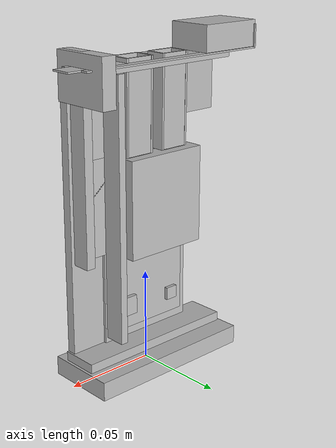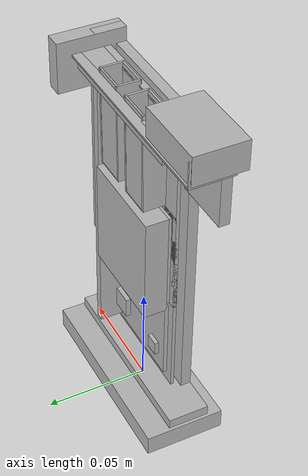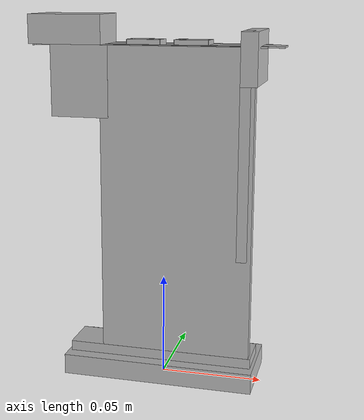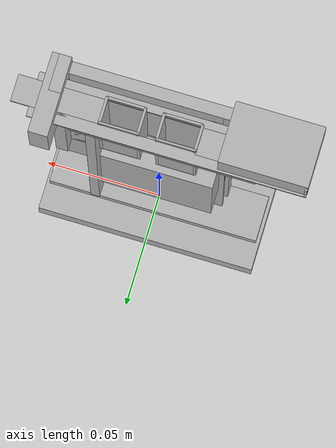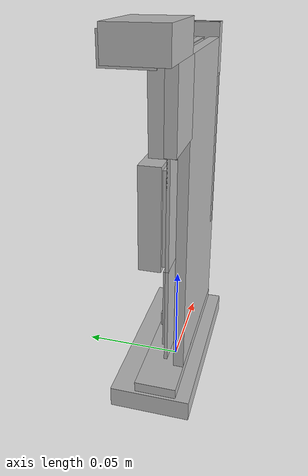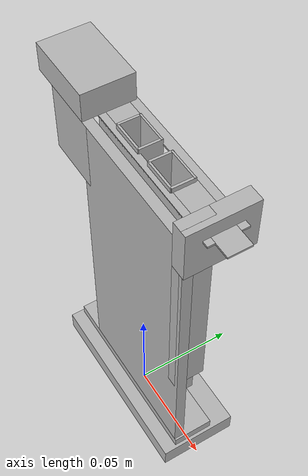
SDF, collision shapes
<?xml version="1.0" ?>
<sdf version="1.9">
  <model name="NIC Card Mount 3 Phase 2">
    <static>true</static>

    <link name="nic_card_mount_link">
      <visual name="nic_card_mount_visual">
        <geometry>
          <mesh>
            <uri>nic_card_mount_visual.glb</uri>
          </mesh>
        </geometry>
      </visual>
      <collision name="v1015085006_collider_box">
        <pose>0.008 -0.0075 0.0875 0.0 0.0 1.570796</pose>
        <geometry>
          <box>
            <size>0.005003 0.074013 0.155018</size>
          </box>
        </geometry>
      </collision>
      <collision name="v1015085006_collider_box.001">
        <pose>-0.046402 0.0025 0.172 0.0 0.0 1.570796</pose>
        <geometry>
          <box>
            <size>0.025016 0.036198 0.014002</size>
          </box>
        </geometry>
      </collision>
      <collision name="v1015085006_collider_box.002">
        <pose>0.040535 -0.0025 0.118 0.0 0.0 1.570796</pose>
        <geometry>
          <box>
            <size>0.01501 0.005065 0.108012</size>
          </box>
        </geometry>
      </collision>
      <collision name="v1015085006_collider_box.003">
        <pose>1e-06 3e-06 0.0125 0.0 0.0 1.570796</pose>
        <geometry>
          <box>
            <size>0.020019 0.091935 0.005001</size>
          </box>
        </geometry>
      </collision>
      <collision name="v1015085006_collider_box004_collider_box">
        <pose>-0.03923 -0.007499 0.147803 0.0 0.0 1.570796</pose>
        <geometry>
          <box>
            <size>0.005021 0.028547 0.034399</size>
          </box>
        </geometry>
      </collision>
      <collision name="nic card mount_collider_box">
        <pose>0.04199 0.0065 0.159548 0.0 -0.0 1.570796</pose>
        <geometry>
          <box>
            <size>0.03302 0.007981 0.024906</size>
          </box>
        </geometry>
      </collision>
      <collision name="nic base mount_collider_box">
        <pose>0.0 0.002501 0.005014 0.0 0.0 1.570796</pose>
        <geometry>
          <box>
            <size>0.03842 0.094948 0.01004</size>
          </box>
        </geometry>
      </collision>
    </link>

    <link name="nic_card_link">
      <pose>0 0 0.0899 -1.57 0 0</pose>
      <inertial auto="true">
        <mass>0.15</mass>
      </inertial>
      <visual name="nic_card_visual">
        <geometry>
          <mesh>
            <uri>nic_card_visual.glb</uri>
          </mesh>
        </geometry>
      </visual>
      <collision name="pcb_collider_box">
        <pose>0.0 0.0 -0.0008 0.0 0.0 0.0</pose>
        <geometry>
          <box>
            <size>0.056 0.145 0.0016</size>
          </box>
        </geometry>
        <surface>
          <friction>
            <torsional>
              <coefficient>0.1</coefficient>
            </torsional>
            <bullet>
              <friction>0.1</friction>
              <friction2>0.1</friction2>
              <rolling_friction>0.1</rolling_friction>
            </bullet>
          </friction>
        </surface>
      </collision>
      <collision name="pcb_collider_box.001">
        <pose>0.0065 -0.0025 -0.0008 0.0 0.0 0.0</pose>
        <geometry>
          <box>
            <size>0.069 0.051 0.0016</size>
          </box>
        </geometry>
        <surface>
          <friction>
            <torsional>
              <coefficient>0.1</coefficient>
            </torsional>
            <bullet>
              <friction>0.1</friction>
              <friction2>0.1</friction2>
              <rolling_friction>0.1</rolling_friction>
            </bullet>
          </friction>
        </surface>
      </collision>
      <collision name="pcb_collider_box.002">
        <pose>0.004 -0.02475 -0.0008 0.0 0.0 0.0</pose>
        <geometry>
          <box>
            <size>0.064 0.0955 0.0016</size>
          </box>
        </geometry>
        <surface>
          <friction>
            <torsional>
              <coefficient>0.1</coefficient>
            </torsional>
            <bullet>
              <friction>0.1</friction>
              <friction2>0.1</friction2>
              <rolling_friction>0.1</rolling_friction>
            </bullet>
          </friction>
        </surface>
      </collision>
      <collision name="cylinder015_collider_cylinder">
        <pose>0.03175 -0.063 -0.000988 0.0 0.0 0.0</pose>
        <geometry>
          <cylinder>
            <radius>0.00268</radius>
            <length>0.005514</length>
          </cylinder>
        </geometry>
        <surface>
          <friction>
            <torsional>
              <coefficient>0.1</coefficient>
            </torsional>
            <bullet>
              <friction>0.1</friction>
              <friction2>0.1</friction2>
              <rolling_friction>0.1</rolling_friction>
            </bullet>
          </friction>
        </surface>
      </collision>
      <collision name="cylinder017_collider_cylinder">
        <pose>-0.02225 -0.0675 -0.000986 0.0 0.0 0.0</pose>
        <geometry>
          <cylinder>
            <radius>0.00268</radius>
            <length>0.005518</length>
          </cylinder>
        </geometry>
        <surface>
          <friction>
            <torsional>
              <coefficient>0.1</coefficient>
            </torsional>
            <bullet>
              <friction>0.1</friction>
              <friction2>0.1</friction2>
              <rolling_friction>0.1</rolling_friction>
            </bullet>
          </friction>
        </surface>
      </collision>
      <collision name="pcb001_collider_box">
        <pose>0.015105 0.054161 0.001899 0.0 0.0 0.0</pose>
        <geometry>
          <box>
            <size>0.01025 0.01025 0.004603</size>
          </box>
        </geometry>
        <surface>
          <friction>
            <torsional>
              <coefficient>0.1</coefficient>
            </torsional>
            <bullet>
              <friction>0.1</friction>
              <friction2>0.1</friction2>
              <rolling_friction>0.1</rolling_friction>
            </bullet>
          </friction>
        </surface>
      </collision>
      <collision name="pcb024_collider_box">
        <pose>-0.015586 0.055516 0.001759 0.0 0.0 0.0</pose>
        <geometry>
          <box>
            <size>0.0068 0.0068 0.004324</size>
          </box>
        </geometry>
        <surface>
          <friction>
            <torsional>
              <coefficient>0.1</coefficient>
            </torsional>
            <bullet>
              <friction>0.1</friction>
              <friction2>0.1</friction2>
              <rolling_friction>0.1</rolling_friction>
            </bullet>
          </friction>
        </surface>
      </collision>
      <collision name="pcb033_collider_box">
        <pose>-0.002297 0.046302 0.000749 0.0 0.0 0.0</pose>
        <geometry>
          <box>
            <size>0.043074 0.041615 0.002303</size>
          </box>
        </geometry>
        <surface>
          <friction>
            <torsional>
              <coefficient>0.1</coefficient>
            </torsional>
            <bullet>
              <friction>0.1</friction>
              <friction2>0.1</friction2>
              <rolling_friction>0.1</rolling_friction>
            </bullet>
          </friction>
        </surface>
      </collision>
      <collision name="cube001_collider_box">
        <pose>0.025006 -0.00041 0.00575 0.0 0.0 0.0</pose>
        <geometry>
          <box>
            <size>0.004 0.14 0.0115</size>
          </box>
        </geometry>
        <surface>
          <friction>
            <torsional>
              <coefficient>0.1</coefficient>
            </torsional>
            <bullet>
              <friction>0.1</friction>
              <friction2>0.1</friction2>
              <rolling_friction>0.1</rolling_friction>
            </bullet>
          </friction>
        </surface>
      </collision>
      <collision name="cube001_collider_box.001">
        <pose>-0.0029 -0.0015 0.008 0.0 0.0 0.0</pose>
        <geometry>
          <box>
            <size>0.047 0.052 0.011</size>
          </box>
        </geometry>
        <surface>
          <friction>
            <torsional>
              <coefficient>0.1</coefficient>
            </torsional>
            <bullet>
              <friction>0.1</friction>
              <friction2>0.1</friction2>
              <rolling_friction>0.1</rolling_friction>
            </bullet>
          </friction>
        </surface>
      </collision>
      <collision name="10099100-011lfc001_collider_box">
        <pose>-0.018049 -0.052954 0.00548 3.128092 0.0 0.0</pose>
        <geometry>
          <box>
            <size>0.001099 0.04872 0.011083</size>
          </box>
        </geometry>
        <surface>
          <friction>
            <torsional>
              <coefficient>0.1</coefficient>
            </torsional>
            <bullet>
              <friction>0.1</friction>
              <friction2>0.1</friction2>
              <rolling_friction>0.1</rolling_friction>
            </bullet>
          </friction>
        </surface>
      </collision>
      <collision name="10099100-011lfc001_collider_box.001">
        <pose>-0.002437 -0.052954 0.005461 3.128092 0.0 0.0</pose>
        <geometry>
          <box>
            <size>0.001125 0.04872 0.011121</size>
          </box>
        </geometry>
        <surface>
          <friction>
            <torsional>
              <coefficient>0.1</coefficient>
            </torsional>
            <bullet>
              <friction>0.1</friction>
              <friction2>0.1</friction2>
              <rolling_friction>0.1</rolling_friction>
            </bullet>
          </friction>
        </surface>
      </collision>
      <collision name="10099100-011lfc001_collider_box.002">
        <pose>-0.010237 -0.052889 0.010484 3.128092 0.0 0.0</pose>
        <geometry>
          <box>
            <size>0.016224 0.04872 0.000923</size>
          </box>
        </geometry>
        <surface>
          <friction>
            <torsional>
              <coefficient>0.1</coefficient>
            </torsional>
            <bullet>
              <friction>0.1</friction>
              <friction2>0.1</friction2>
              <rolling_friction>0.1</rolling_friction>
            </bullet>
          </friction>
        </surface>
      </collision>
      <collision name="10099100-011lfc001_collider_box.003">
        <pose>-0.010237 -0.053024 0.000046 3.128092 0.0 0.0</pose>
        <geometry>
          <box>
            <size>0.016224 0.04872 0.001054</size>
          </box>
        </geometry>
        <surface>
          <friction>
            <torsional>
              <coefficient>0.1</coefficient>
            </torsional>
            <bullet>
              <friction>0.1</friction>
              <friction2>0.1</friction2>
              <rolling_friction>0.1</rolling_friction>
            </bullet>
          </friction>
        </surface>
      </collision>
      <collision name="10099100-011lfc001_collider_box.004">
        <pose>-0.010237 -0.028738 0.003845 3.128092 0.0 0.0</pose>
        <geometry>
          <box>
            <size>0.016224 0.00025 0.013698</size>
          </box>
        </geometry>
        <surface>
          <friction>
            <torsional>
              <coefficient>0.1</coefficient>
            </torsional>
            <bullet>
              <friction>0.1</friction>
              <friction2>0.1</friction2>
              <rolling_friction>0.1</rolling_friction>
            </bullet>
          </friction>
        </surface>
      </collision>
      <collision name="10099100-011lfc001_collider_box.005">
        <pose>0.005151 -0.052954 0.00548 3.128092 0.0 0.0</pose>
        <geometry>
          <box>
            <size>0.001099 0.04872 0.011083</size>
          </box>
        </geometry>
        <surface>
          <friction>
            <torsional>
              <coefficient>0.1</coefficient>
            </torsional>
            <bullet>
              <friction>0.1</friction>
              <friction2>0.1</friction2>
              <rolling_friction>0.1</rolling_friction>
            </bullet>
          </friction>
        </surface>
      </collision>
      <collision name="10099100-011lfc001_collider_box.006">
        <pose>0.020763 -0.052954 0.005461 3.128092 0.0 0.0</pose>
        <geometry>
          <box>
            <size>0.001125 0.04872 0.011121</size>
          </box>
        </geometry>
        <surface>
          <friction>
            <torsional>
              <coefficient>0.1</coefficient>
            </torsional>
            <bullet>
              <friction>0.1</friction>
              <friction2>0.1</friction2>
              <rolling_friction>0.1</rolling_friction>
            </bullet>
          </friction>
        </surface>
      </collision>
      <collision name="10099100-011lfc001_collider_box.007">
        <pose>0.012963 -0.052889 0.010484 3.128092 0.0 0.0</pose>
        <geometry>
          <box>
            <size>0.016224 0.04872 0.000923</size>
          </box>
        </geometry>
        <surface>
          <friction>
            <torsional>
              <coefficient>0.1</coefficient>
            </torsional>
            <bullet>
              <friction>0.1</friction>
              <friction2>0.1</friction2>
              <rolling_friction>0.1</rolling_friction>
            </bullet>
          </friction>
        </surface>
      </collision>
      <collision name="10099100-011lfc001_collider_box.008">
        <pose>0.012963 -0.053024 0.000046 3.128092 0.0 0.0</pose>
        <geometry>
          <box>
            <size>0.016224 0.04872 0.001054</size>
          </box>
        </geometry>
        <surface>
          <friction>
            <torsional>
              <coefficient>0.1</coefficient>
            </torsional>
            <bullet>
              <friction>0.1</friction>
              <friction2>0.1</friction2>
              <rolling_friction>0.1</rolling_friction>
            </bullet>
          </friction>
        </surface>
      </collision>
      <collision name="10099100-011lfc001_collider_box.009">
        <pose>0.012963 -0.028738 0.003845 3.128092 0.0 0.0</pose>
        <geometry>
          <box>
            <size>0.016224 0.00025 0.013698</size>
          </box>
        </geometry>
        <surface>
          <friction>
            <torsional>
              <coefficient>0.1</coefficient>
            </torsional>
            <bullet>
              <friction>0.1</friction>
              <friction2>0.1</friction2>
              <rolling_friction>0.1</rolling_friction>
            </bullet>
          </friction>
        </surface>
      </collision>
      <collision name="plane001_collider_box">
        <pose>-0.007649 -0.074646 -0.000751 0.0 0.0 0.0</pose>
        <geometry>
          <box>
            <size>0.113402 0.000875 0.003449</size>
          </box>
        </geometry>
        <surface>
          <friction>
            <torsional>
              <coefficient>0.1</coefficient>
            </torsional>
            <bullet>
              <friction>0.1</friction>
              <friction2>0.1</friction2>
              <rolling_friction>0.1</rolling_friction>
            </bullet>
          </friction>
        </surface>
      </collision>
      <collision name="plane001_collider_box.001">
        <pose>-0.007649 -0.074646 0.01352 0.0 0.0 0.0</pose>
        <geometry>
          <box>
            <size>0.113402 0.000875 0.00501</size>
          </box>
        </geometry>
        <surface>
          <friction>
            <torsional>
              <coefficient>0.1</coefficient>
            </torsional>
            <bullet>
              <friction>0.1</friction>
              <friction2>0.1</friction2>
              <rolling_friction>0.1</rolling_friction>
            </bullet>
          </friction>
        </surface>
      </collision>
      <collision name="plane001_collider_box.002">
        <pose>0.038559 -0.074646 0.006455 0.0 0.0 0.0</pose>
        <geometry>
          <box>
            <size>0.036181 0.000875 0.011123</size>
          </box>
        </geometry>
        <surface>
          <friction>
            <torsional>
              <coefficient>0.1</coefficient>
            </torsional>
            <bullet>
              <friction>0.1</friction>
              <friction2>0.1</friction2>
              <rolling_friction>0.1</rolling_friction>
            </bullet>
          </friction>
        </surface>
      </collision>
      <collision name="plane001_collider_box.003">
        <pose>-0.041261 -0.074646 0.006455 0.0 0.0 0.0</pose>
        <geometry>
          <box>
            <size>0.046178 0.000875 0.011123</size>
          </box>
        </geometry>
        <surface>
          <friction>
            <torsional>
              <coefficient>0.1</coefficient>
            </torsional>
            <bullet>
              <friction>0.1</friction>
              <friction2>0.1</friction2>
              <rolling_friction>0.1</rolling_friction>
            </bullet>
          </friction>
        </surface>
      </collision>
      <collision name="plane001_collider_box.004">
        <pose>-0.063913 -0.080558 0.005525 0.0 0.0 0.0</pose>
        <geometry>
          <box>
            <size>0.000875 0.0127 0.021</size>
          </box>
        </geometry>
        <surface>
          <friction>
            <torsional>
              <coefficient>0.1</coefficient>
            </torsional>
            <bullet>
              <friction>0.1</friction>
              <friction2>0.1</friction2>
              <rolling_friction>0.1</rolling_friction>
            </bullet>
          </friction>
        </surface>
      </collision>
      <collision name="plane001_collider_box.005">
        <pose>0.004 -0.067206 -0.001238 0.0 0.0 0.0</pose>
        <geometry>
          <box>
            <size>0.064 0.014996 0.002475</size>
          </box>
        </geometry>
        <surface>
          <friction>
            <torsional>
              <coefficient>0.1</coefficient>
            </torsional>
            <bullet>
              <friction>0.1</friction>
              <friction2>0.1</friction2>
              <rolling_friction>0.1</rolling_friction>
            </bullet>
          </friction>
        </surface>
      </collision>
      <collision name="cube001_collider_box.002">
        <pose>-0.0029 -0.0015 0.001228 0.0 0.0 0.0</pose>
        <geometry>
          <box>
            <size>0.043 0.048 0.003149</size>
          </box>
        </geometry>
        <surface>
          <friction>
            <torsional>
              <coefficient>0.1</coefficient>
            </torsional>
            <bullet>
              <friction>0.1</friction>
              <friction2>0.1</friction2>
              <rolling_friction>0.1</rolling_friction>
            </bullet>
          </friction>
        </surface>
      </collision>
      <collision name="plane001_collider_box.006">
        <pose>-0.005942 -0.073499 0.015586 0.0 0.0 0.0</pose>
        <geometry>
          <box>
            <size>0.076184 0.003168 0.000877</size>
          </box>
        </geometry>
        <surface>
          <friction>
            <torsional>
              <coefficient>0.1</coefficient>
            </torsional>
            <bullet>
              <friction>0.1</friction>
              <friction2>0.1</friction2>
              <rolling_friction>0.1</rolling_friction>
            </bullet>
          </friction>
        </surface>
      </collision>

      <collision name="contact_collision_01">
        <pose>0.012963 -0.0305 0.002845 3.128092 0.0 0.0</pose>
        <geometry>
          <box>
            <size>0.008112 0.00025 0.0025</size>
          </box>
        </geometry>
        <surface>
          <friction>
            <torsional>
              <coefficient>0.1</coefficient>
            </torsional>
            <bullet>
              <friction>0.1</friction>
              <friction2>0.1</friction2>
              <rolling_friction>0.1</rolling_friction>
            </bullet>
          </friction>
        </surface>
      </collision>

      <collision name="contact_collision_02">
        <pose>-0.010237 -0.0305 0.002845 3.128092 0.0 0.0</pose>
        <geometry>
          <box>
            <size>0.008112 0.00025 0.0025</size>
          </box>
        </geometry>
        <surface>
          <friction>
            <torsional>
              <coefficient>0.1</coefficient>
            </torsional>
            <bullet>
              <friction>0.1</friction>
              <friction2>0.1</friction2>
              <rolling_friction>0.1</rolling_friction>
            </bullet>
          </friction>
        </surface>
      </collision>

      <collision name="contact_collision_01_holder">
        <pose>0.012963 -0.030 0.008 3.128092 0.0 0.0</pose>
        <geometry>
          <box>
            <size>0.008112 0.00025 0.002</size>
          </box>
        </geometry>
        <surface>
          <friction>
            <torsional>
              <coefficient>0.1</coefficient>
            </torsional>
            <bullet>
              <friction>0.1</friction>
              <friction2>0.1</friction2>
              <rolling_friction>0.1</rolling_friction>
            </bullet>
          </friction>
        </surface>
      </collision>

      <collision name="contact_collision_02_holder">
        <pose>-0.010237 -0.030 0.008 3.128092 0.0 0.0</pose>
        <geometry>
          <box>
            <size>0.008112 0.00025 0.002</size>
          </box>
        </geometry>
        <surface>
          <friction>
            <torsional>
              <coefficient>0.1</coefficient>
            </torsional>
            <bullet>
              <friction>0.1</friction>
              <friction2>0.1</friction2>
              <rolling_friction>0.1</rolling_friction>
            </bullet>
          </friction>
        </surface>
      </collision>
    </link>

    <joint name="card_joint" type="fixed">
      <parent>nic_card_mount_link</parent>
      <child>nic_card_link</child>
    </joint>

    <link name="sfp_port_0_link">
      <pose relative_to="nic_card_link">0.01295 -0.031572 0.00501 4.69895 0 0</pose>
    </link>
    <plugin
      filename="static://gz::sim::systems::TouchPlugin"
      name="gz::sim::systems::TouchPlugin">
      <target>sfp_tip_link/collision/contact_collision</target>
      <time>1</time>
      <enabled>true</enabled>
      <namespace>nic_card_mount_3/sfp_port_0</namespace>
      <create_contact_sensor_for_collision>true</create_contact_sensor_for_collision>
      <collision>contact_collision_01</collision>
    </plugin>

    <link name="sfp_port_0_link_entrance">
      <pose relative_to="sfp_port_0_link">0 0 -0.0458 0 0 0</pose>
    </link>

    <joint name="sfp_port_0_joint" type="fixed">
      <parent>nic_card_link</parent>
      <child>sfp_port_0_link</child>
    </joint>

    <joint name="sfp_port_0_entrance_joint" type="fixed">
      <parent>sfp_port_0_link</parent>
      <child>sfp_port_0_link_entrance</child>
    </joint>

    <link name="sfp_port_1_link">
      <pose relative_to="nic_card_link">-0.01025 -0.031572 0.00501 4.69895 0 0</pose>
    </link>
    <plugin
      filename="static://gz::sim::systems::TouchPlugin"
      name="gz::sim::systems::TouchPlugin">
      <target>sfp_tip_link/collision/contact_collision</target>
      <time>1</time>
      <enabled>true</enabled>
      <namespace>nic_card_mount_3/sfp_port_1</namespace>
      <create_contact_sensor_for_collision>true</create_contact_sensor_for_collision>
      <collision>contact_collision_02</collision>
    </plugin>

    <link name="sfp_port_1_link_entrance">
      <pose relative_to="sfp_port_1_link">0 0 -0.0458 0 0 0</pose>
    </link>

    <joint name="sfp_port_1_joint" type="fixed">
      <parent>nic_card_link</parent>
      <child>sfp_port_1_link</child>
    </joint>

    <joint name="sfp_port_1_entrance_joint" type="fixed">
      <parent>sfp_port_1_link</parent>
      <child>sfp_port_1_link_entrance</child>
    </joint>

    <plugin filename="static://gz::sim::systems::PosePublisher"
      name="gz::sim::systems::PosePublisher">
      <publish_link_pose>true</publish_link_pose>
      <publish_sensor_pose>false</publish_sensor_pose>
      <publish_collision_pose>false</publish_collision_pose>
      <publish_visual_pose>false</publish_visual_pose>
      <publish_nested_model_pose>true</publish_nested_model_pose>
      <publish_model_pose>true</publish_model_pose>
      <use_pose_vector_msg>true</use_pose_vector_msg>
      <static_publisher>true</static_publisher>
      <update_frequency>0</update_frequency>
      <static_update_frequency>1</static_update_frequency>
      <topic>/nic_card_mount_3/pose</topic>
    </plugin>
  </model>
</sdf>
